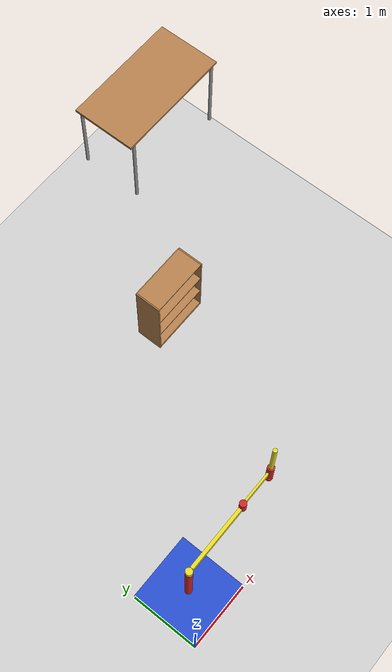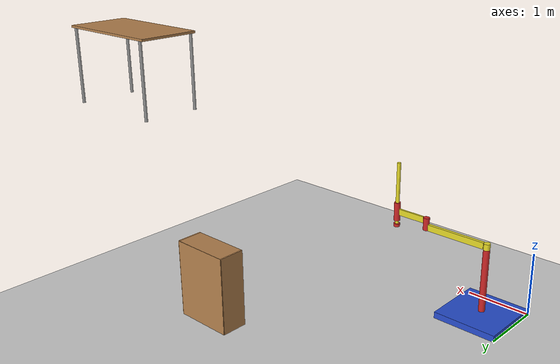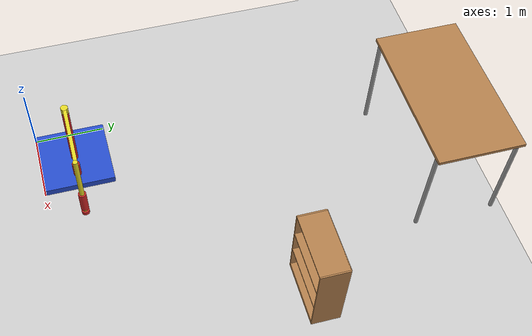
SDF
<sdf version="1.6">
 <world name="default">
  <light name="sun" type="directional">
   <pose>0 0 10 0 -0 0</pose>
   <diffuse>0.8 0.8 0.8 1</diffuse>
   <specular>0.2 0.2 0.2 1</specular>
   <attenuation>
    <range>1000</range>
    <constant>0.9</constant>
    <linear>0.01</linear>
    <quadratic>0.001</quadratic>
   </attenuation>
   <direction>-0.5 0.1 -0.9</direction>
  </light>
  <model name="ground_plane">
   <static>1</static>
   <link name="link">
    <collision name="collision">
     <geometry><plane><normal>0 0 1</normal><size>100 100</size></plane></geometry>
     <surface>
      <contact><collide_bitmask>65535</collide_bitmask></contact>
      <friction><ode><mu>100</mu><mu2>50</mu2></ode></friction>
     </surface>
    </collision>
    <visual name="visual">
     <cast_shadows>0</cast_shadows>
     <geometry><plane><normal>0 0 1</normal><size>100 100</size></plane></geometry>
     <material>
      <script><uri>file://media/materials/scripts/gazebo.material</uri><name>Gazebo/Grey</name></script>
     </material>
    </visual>
   </link>
  </model>
  <gravity>0 0 -9.8</gravity>
  <magnetic_field>6e-06 2.3e-05 -4.2e-05</magnetic_field>
  <atmosphere type="adiabatic"/>
  <physics name="default_physics" default="0" type="ode">
   <max_step_size>0.001</max_step_size>
   <real_time_factor>1</real_time_factor>
   <real_time_update_rate>1000</real_time_update_rate>
  </physics>
  <scene><ambient>0.4 0.4 0.4 1</ambient><background>0.7 0.7 0.7 1</background><shadows>1</shadows></scene>
  <audio><device>default</device></audio>
  <spherical_coordinates>
   <surface_model>EARTH_WGS84</surface_model>
   <latitude_deg>0</latitude_deg>
   <longitude_deg>0</longitude_deg>
   <elevation>0</elevation>
   <heading_deg>0</heading_deg>
  </spherical_coordinates>
  <model name="table">
   <static>1</static>
   <link name="link">
    <collision name="surface">
     <pose>0 0 1 0 -0 0</pose>
     <geometry><box><size>1.5 0.8 0.03</size></box></geometry>
     <surface><friction><ode><mu>0.6</mu><mu2>0.6</mu2></ode></friction></surface>
    </collision>
    <visual name="visual1">
     <pose>0 0 1 0 -0 0</pose>
     <geometry><box><size>1.5 0.8 0.03</size></box></geometry>
     <material>
      <script><uri>file://media/materials/scripts/gazebo.material</uri><name>Gazebo/Wood</name></script>
     </material>
    </visual>
    <collision name="front_left_leg">
     <pose>0.68 0.38 0.5 0 -0 0</pose>
     <geometry><cylinder><radius>0.02</radius><length>1</length></cylinder></geometry>
    </collision>
    <visual name="front_left_leg">
     <pose>0.68 0.38 0.5 0 -0 0</pose>
     <geometry><cylinder><radius>0.02</radius><length>1</length></cylinder></geometry>
     <material>
      <script><uri>file://media/materials/scripts/gazebo.material</uri><name>Gazebo/Grey</name></script>
     </material>
    </visual>
    <collision name="front_right_leg">
     <pose>0.68 -0.38 0.5 0 -0 0</pose>
     <geometry><cylinder><radius>0.02</radius><length>1</length></cylinder></geometry>
    </collision>
    <visual name="front_right_leg">
     <pose>0.68 -0.38 0.5 0 -0 0</pose>
     <geometry><cylinder><radius>0.02</radius><length>1</length></cylinder></geometry>
     <material>
      <script><uri>file://media/materials/scripts/gazebo.material</uri><name>Gazebo/Grey</name></script>
     </material>
    </visual>
    <collision name="back_right_leg">
     <pose>-0.68 -0.38 0.5 0 -0 0</pose>
     <geometry><cylinder><radius>0.02</radius><length>1</length></cylinder></geometry>
    </collision>
    <visual name="back_right_leg">
     <pose>-0.68 -0.38 0.5 0 -0 0</pose>
     <geometry><cylinder><radius>0.02</radius><length>1</length></cylinder></geometry>
     <material>
      <script><uri>file://media/materials/scripts/gazebo.material</uri><name>Gazebo/Grey</name></script>
     </material>
    </visual>
    <collision name="back_left_leg">
     <pose>-0.68 0.38 0.5 0 -0 0</pose>
     <geometry><cylinder><radius>0.02</radius><length>1</length></cylinder></geometry>
    </collision>
    <visual name="back_left_leg">
     <pose>-0.68 0.38 0.5 0 -0 0</pose>
     <geometry><cylinder><radius>0.02</radius><length>1</length></cylinder></geometry>
     <material>
      <script><uri>file://media/materials/scripts/gazebo.material</uri><name>Gazebo/Grey</name></script>
     </material>
    </visual>
   </link>
   <pose>3.88285 3.88285 3.3 0 -0 0</pose>
  </model>
  <model name="simple_arm">
   <link name="arm_base">
    <inertial>
     <pose>0 0 0.00099 0 -0 0</pose>
     <inertia><ixx>1.11</ixx><ixy>0</ixy><ixz>0</ixz><iyy>100.11</iyy><iyz>0</iyz><izz>1.01</izz></inertia>
     <mass>101</mass>
    </inertial>
    <collision name="arm_base_geom">
     <pose>0 0 0.05 0 -0 0</pose>
     <geometry><box><size>1 1 0.1</size></box></geometry>
    </collision>
    <visual name="arm_base_geom_visual">
     <pose>0 0 0.05 0 -0 0</pose>
     <geometry><box><size>1 1 0.1</size></box></geometry>
     <material>
      <script><uri>file://media/materials/scripts/gazebo.material</uri><name>Gazebo/Blue</name></script>
     </material>
    </visual>
    <collision name="arm_base_geom_arm_trunk">
     <pose>0 0 0.6 0 -0 0</pose>
     <geometry><cylinder><radius>0.05</radius><length>1</length></cylinder></geometry>
    </collision>
    <visual name="arm_base_geom_arm_trunk_visual">
     <pose>0 0 0.6 0 -0 0</pose>
     <geometry><cylinder><radius>0.05</radius><length>1</length></cylinder></geometry>
     <material>
      <script><uri>file://media/materials/scripts/gazebo.material</uri><name>Gazebo/Red</name></script>
     </material>
    </visual>
   </link>
   <link name="arm_shoulder_pan">
    <pose>0 0 1.1 0 -0 0</pose>
    <inertial>
     <pose>0.045455 0 0 0 -0 0</pose>
     <inertia><ixx>0.011</ixx><ixy>0</ixy><ixz>0</ixz><iyy>0.0225</iyy><iyz>0</iyz><izz>0.0135</izz></inertia>
     <mass>1.1</mass>
    </inertial>
    <collision name="arm_shoulder_pan_geom">
     <pose>0 0 0.05 0 -0 0</pose>
     <geometry><cylinder><radius>0.05</radius><length>0.1</length></cylinder></geometry>
    </collision>
    <visual name="arm_shoulder_pan_geom_visual">
     <pose>0 0 0.05 0 -0 0</pose>
     <geometry><cylinder><radius>0.05</radius><length>0.1</length></cylinder></geometry>
     <material>
      <script><uri>file://media/materials/scripts/gazebo.material</uri><name>Gazebo/Yellow</name></script>
     </material>
    </visual>
    <collision name="arm_shoulder_pan_geom_arm_shoulder">
     <pose>0.55 0 0.05 0 -0 0</pose>
     <geometry><box><size>1 0.05 0.1</size></box></geometry>
    </collision>
    <visual name="arm_shoulder_pan_geom_arm_shoulder_visual">
     <pose>0.55 0 0.05 0 -0 0</pose>
     <geometry><box><size>1 0.05 0.1</size></box></geometry>
     <material>
      <script><uri>file://media/materials/scripts/gazebo.material</uri><name>Gazebo/Yellow</name></script>
     </material>
    </visual>
   </link>
   <link name="arm_elbow_pan">
    <pose>1.05 0 1.1 0 -0 0</pose>
    <inertial>
     <pose>0.0875 0 0.083333 0 -0 0</pose>
     <inertia>
      <ixx>0.031</ixx>
      <ixy>0</ixy>
      <ixz>0.005</ixz>
      <iyy>0.07275</iyy>
      <iyz>0</iyz>
      <izz>0.04475</izz>
     </inertia>
     <mass>1.2</mass>
    </inertial>
    <collision name="arm_elbow_pan_geom">
     <pose>0 0 0.1 0 -0 0</pose>
     <geometry><cylinder><radius>0.05</radius><length>0.2</length></cylinder></geometry>
    </collision>
    <visual name="arm_elbow_pan_geom_visual">
     <pose>0 0 0.1 0 -0 0</pose>
     <geometry><cylinder><radius>0.05</radius><length>0.2</length></cylinder></geometry>
     <material>
      <script><uri>file://media/materials/scripts/gazebo.material</uri><name>Gazebo/Red</name></script>
     </material>
    </visual>
    <collision name="arm_elbow_pan_geom_arm_elbow">
     <pose>0.3 0 0.15 0 -0 0</pose>
     <geometry><box><size>0.5 0.03 0.1</size></box></geometry>
    </collision>
    <visual name="arm_elbow_pan_geom_arm_elbow_visual">
     <pose>0.3 0 0.15 0 -0 0</pose>
     <geometry><box><size>0.5 0.03 0.1</size></box></geometry>
     <material>
      <script><uri>file://media/materials/scripts/gazebo.material</uri><name>Gazebo/Yellow</name></script>
     </material>
    </visual>
    <collision name="arm_elbow_pan_geom_arm_wrist">
     <pose>0.55 0 0.15 0 -0 0</pose>
     <geometry><cylinder><radius>0.05</radius><length>0.3</length></cylinder></geometry>
    </collision>
    <visual name="arm_elbow_pan_geom_arm_wrist_visual">
     <pose>0.55 0 0.15 0 -0 0</pose>
     <geometry><cylinder><radius>0.05</radius><length>0.3</length></cylinder></geometry>
     <material>
      <script><uri>file://media/materials/scripts/gazebo.material</uri><name>Gazebo/Red</name></script>
     </material>
    </visual>
   </link>
   <link name="arm_wrist_lift">
    <pose>1.6 0 1.05 0 -0 0</pose>
    <inertial>
     <inertia><ixx>0.01</ixx><ixy>0</ixy><ixz>0</ixz><iyy>0.01</iyy><iyz>0</iyz><izz>0.001</izz></inertia>
     <mass>0.1</mass>
    </inertial>
    <collision name="arm_wrist_lift_geom">
     <pose>0 0 0.5 0 -0 0</pose>
     <geometry><cylinder><radius>0.03</radius><length>1</length></cylinder></geometry>
    </collision>
    <visual name="arm_wrist_lift_geom_visual">
     <pose>0 0 0.5 0 -0 0</pose>
     <geometry><cylinder><radius>0.03</radius><length>1</length></cylinder></geometry>
     <material>
      <script><uri>file://media/materials/scripts/gazebo.material</uri><name>Gazebo/Yellow</name></script>
     </material>
    </visual>
   </link>
   <link name="arm_wrist_roll">
    <pose>1.6 0 1 0 -0 0</pose>
    <inertial>
     <inertia><ixx>0.01</ixx><ixy>0</ixy><ixz>0</ixz><iyy>0.01</iyy><iyz>0</iyz><izz>0.001</izz></inertia>
     <mass>0.1</mass>
    </inertial>
    <collision name="arm_wrist_roll_geom">
     <pose>0 0 0.025 0 -0 0</pose>
     <geometry><cylinder><radius>0.05</radius><length>0.05</length></cylinder></geometry>
    </collision>
    <visual name="arm_wrist_roll_geom_visual">
     <pose>0 0 0.025 0 -0 0</pose>
     <geometry><cylinder><radius>0.05</radius><length>0.05</length></cylinder></geometry>
     <material>
      <script><uri>file://media/materials/scripts/gazebo.material</uri><name>Gazebo/Red</name></script>
     </material>
    </visual>
   </link>
   <joint name="arm_shoulder_pan_joint" type="revolute">
    <parent>arm_base</parent>
    <child>arm_shoulder_pan</child>
    <axis>
     <dynamics>
      <damping>1</damping>
      <friction>0</friction>
      <spring_reference>0</spring_reference>
      <spring_stiffness>0</spring_stiffness>
     </dynamics>
     <xyz>0 0 1</xyz>
     <use_parent_model_frame>1</use_parent_model_frame>
     <limit><lower>-1e+16</lower><upper>1e+16</upper></limit>
    </axis>
   </joint>
   <joint name="arm_elbow_pan_joint" type="revolute">
    <parent>arm_shoulder_pan</parent>
    <child>arm_elbow_pan</child>
    <axis>
     <dynamics>
      <damping>1</damping>
      <friction>0</friction>
      <spring_reference>0</spring_reference>
      <spring_stiffness>0</spring_stiffness>
     </dynamics>
     <xyz>0 0 1</xyz>
     <use_parent_model_frame>1</use_parent_model_frame>
     <limit><lower>-1e+16</lower><upper>1e+16</upper></limit>
    </axis>
   </joint>
   <joint name="arm_wrist_lift_joint" type="prismatic">
    <parent>arm_elbow_pan</parent>
    <child>arm_wrist_lift</child>
    <axis>
     <dynamics>
      <damping>1</damping>
      <friction>0</friction>
      <spring_reference>0</spring_reference>
      <spring_stiffness>0</spring_stiffness>
     </dynamics>
     <limit><lower>-0.8</lower><upper>0.1</upper></limit>
     <xyz>0 0 1</xyz>
     <use_parent_model_frame>1</use_parent_model_frame>
    </axis>
   </joint>
   <joint name="arm_wrist_roll_joint" type="revolute">
    <parent>arm_wrist_lift</parent>
    <child>arm_wrist_roll</child>
    <axis>
     <dynamics>
      <damping>1</damping>
      <friction>0</friction>
      <spring_reference>0</spring_reference>
      <spring_stiffness>0</spring_stiffness>
     </dynamics>
     <limit><lower>-2.99999</lower><upper>2.99999</upper></limit>
     <xyz>0 0 1</xyz>
     <use_parent_model_frame>1</use_parent_model_frame>
    </axis>
   </joint>
   <pose>0.496443 0.510139 -0 0 0 -0.001461</pose>
  </model>
  <model name="bookshelf">
   <static>1</static>
   <link name="link">
    <inertial><mass>1</mass></inertial>
    <collision name="back">
     <pose>0 0.005 0.6 0 -0 0</pose>
     <geometry><box><size>0.9 0.01 1.2</size></box></geometry>
    </collision>
    <visual name="visual1">
     <pose>0 0.005 0.6 0 -0 0</pose>
     <geometry><box><size>0.9 0.01 1.2</size></box></geometry>
     <material>
      <script><uri>file://media/materials/scripts/gazebo.material</uri><name>Gazebo/Wood</name></script>
     </material>
    </visual>
    <collision name="left_side">
     <pose>0.45 -0.195 0.6 0 -0 0</pose>
     <geometry><box><size>0.02 0.4 1.2</size></box></geometry>
    </collision>
    <visual name="visual2">
     <pose>0.45 -0.195 0.6 0 -0 0</pose>
     <geometry><box><size>0.02 0.4 1.2</size></box></geometry>
     <material>
      <script><uri>file://media/materials/scripts/gazebo.material</uri><name>Gazebo/Wood</name></script>
     </material>
    </visual>
    <collision name="right_side">
     <pose>-0.45 -0.195 0.6 0 -0 0</pose>
     <geometry><box><size>0.02 0.4 1.2</size></box></geometry>
    </collision>
    <visual name="visual3">
     <pose>-0.45 -0.195 0.6 0 -0 0</pose>
     <geometry><box><size>0.02 0.4 1.2</size></box></geometry>
     <material>
      <script><uri>file://media/materials/scripts/gazebo.material</uri><name>Gazebo/Wood</name></script>
     </material>
    </visual>
    <collision name="bottom">
     <pose>0 -0.195 0.03 0 -0 0</pose>
     <geometry><box><size>0.88 0.4 0.06</size></box></geometry>
    </collision>
    <visual name="visual4">
     <pose>0 -0.195 0.03 0 -0 0</pose>
     <geometry><box><size>0.88 0.4 0.06</size></box></geometry>
     <material>
      <script><uri>file://media/materials/scripts/gazebo.material</uri><name>Gazebo/Wood</name></script>
     </material>
    </visual>
    <collision name="top">
     <pose>0 -0.195 1.19 0 -0 0</pose>
     <geometry><box><size>0.88 0.4 0.02</size></box></geometry>
    </collision>
    <visual name="visual5">
     <pose>0 -0.195 1.19 0 -0 0</pose>
     <geometry><box><size>0.88 0.4 0.02</size></box></geometry>
     <material>
      <script><uri>file://media/materials/scripts/gazebo.material</uri><name>Gazebo/Wood</name></script>
     </material>
    </visual>
    <collision name="low_shelf">
     <pose>0 -0.195 0.43 0 -0 0</pose>
     <geometry><box><size>0.88 0.4 0.02</size></box></geometry>
    </collision>
    <visual name="visual6">
     <pose>0 -0.195 0.43 0 -0 0</pose>
     <geometry><box><size>0.88 0.4 0.02</size></box></geometry>
     <material>
      <script><uri>file://media/materials/scripts/gazebo.material</uri><name>Gazebo/Wood</name></script>
     </material>
    </visual>
    <collision name="high_shelf">
     <pose>0 -0.195 0.8 0 -0 0</pose>
     <geometry><box><size>0.88 0.4 0.02</size></box></geometry>
    </collision>
    <visual name="visual7">
     <pose>0 -0.195 0.8 0 -0 0</pose>
     <geometry><box><size>0.88 0.4 0.02</size></box></geometry>
     <material>
      <script><uri>file://media/materials/scripts/gazebo.material</uri><name>Gazebo/Wood</name></script>
     </material>
    </visual>
   </link>
   <pose>3.40576 3.40576 0 0 -0 0</pose>
  </model>
 </world>
</sdf>
